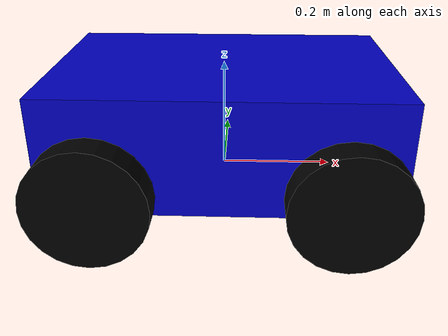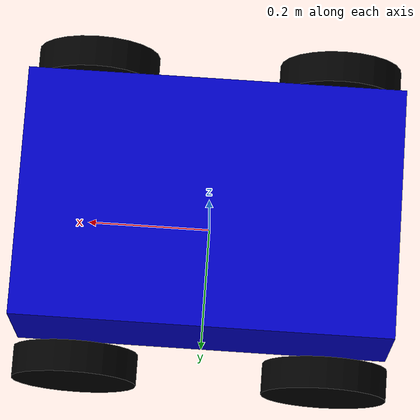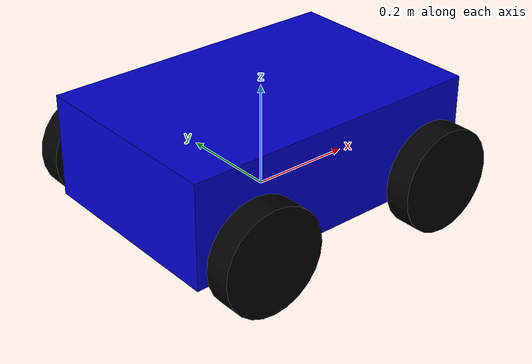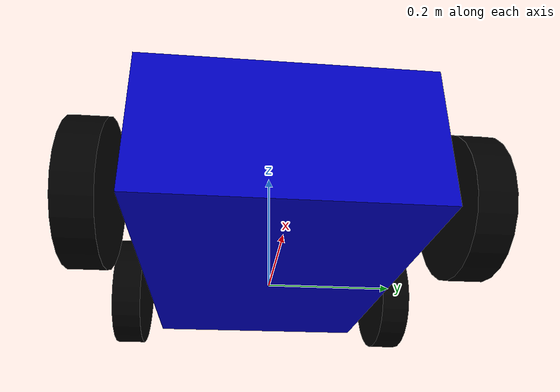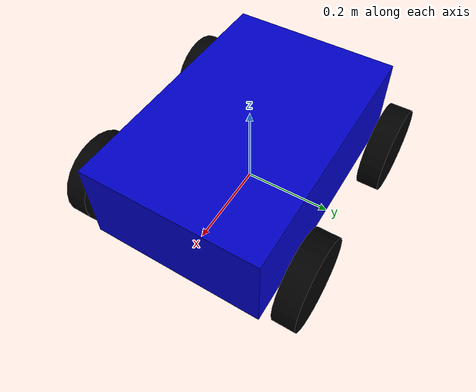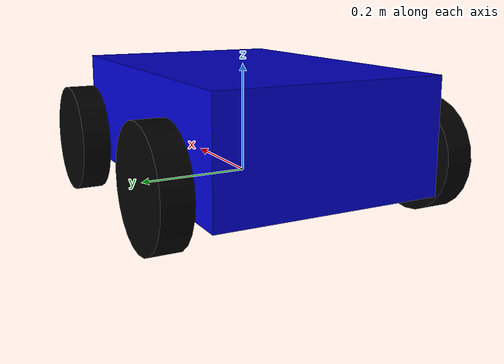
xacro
<?xml version="1.0"?>
<robot xmlns:xacro="http://www.ros.org/wiki/xacro" name="jazzy_bot">

    <material name="blue"> <color rgba="0 0 0.8 1"/> </material>
    <material name="black"> <color rgba="0 0 0 1"/> </material>

    <xacro:property name="base_width" value="0.4"/>
    <xacro:property name="base_length" value="0.6"/>
    <xacro:property name="base_height" value="0.2"/>
    <xacro:property name="wheel_radius" value="0.1"/>
    <xacro:property name="wheel_width" value="0.05"/>
    <xacro:property name="wheel_ygap" value="0.05"/>
    <xacro:property name="wheel_zoff" value="0.05"/>
    <xacro:property name="wheel_xoff" value="0.2"/>

    <xacro:macro name="box_inertia" params="m w h d">
        <inertial>
            <origin xyz="0 0 0" rpy="${pi/2} 0 ${pi/2}"/>
            <mass value="${m}"/>
            <inertia ixx="${(m/12) * (h*h + d*d)}" ixy="0.0" ixz="0.0" iyy="${(m/12) * (w*w + d*d)}" iyz="0.0" izz="${(m/12) * (w*w + h*h)}"/>
        </inertial>
    </xacro:macro>

    <xacro:macro name="cylinder_inertia" params="m r h">
        <inertial>
            <origin xyz="0 0 0" rpy="${pi/2} 0 0" />
            <mass value="${m}"/>
            <inertia ixx="${(m/12) * (3*r*r + h*h)}" ixy="0" ixz="0" iyy="${(m/12) * (3*r*r + h*h)}" iyz="0" izz="${(m/2) * (r*r)}"/>
        </inertial>
    </xacro:macro>

    <link name="base_footprint"/>

    <joint name="base_joint" type="fixed">
        <parent link="base_footprint"/>
        <child link="base_link"/>
        <origin xyz="0 0 ${wheel_radius}" rpy="0 0 0"/>
    </joint>

    <link name="base_link">
        <visual>
            <geometry> <box size="${base_length} ${base_width} ${base_height}"/> </geometry>
            <material name="blue"/>
        </visual>
        <collision>
            <geometry> <box size="${base_length} ${base_width} ${base_height}"/> </geometry>
        </collision>
        <xacro:box_inertia m="15" w="${base_width}" h="${base_height}" d="${base_length}"/>
    </link>

    <xacro:macro name="wheel" params="prefix x_reflect y_reflect">
        <link name="${prefix}_wheel">
            <visual>
                <origin xyz="0 0 0" rpy="${pi/2} 0 0"/>
                <geometry> <cylinder radius="${wheel_radius}" length="${wheel_width}"/> </geometry>
                <material name="black"/>
            </visual>
            <collision>
                <origin xyz="0 0 0" rpy="${pi/2} 0 0"/>
                <geometry> <cylinder radius="${wheel_radius}" length="${wheel_width}"/> </geometry>
            </collision>
            <xacro:cylinder_inertia m="0.5" r="${wheel_radius}" h="${wheel_width}"/>
        </link>

        <joint name="${prefix}_wheel_joint" type="continuous">
            <parent link="base_link"/>
            <child link="${prefix}_wheel"/>
            <origin xyz="${x_reflect*wheel_xoff} ${y_reflect*(base_width/2+wheel_ygap)} ${-wheel_zoff}" rpy="0 0 0"/>
            <axis xyz="0 1 0"/>
        </joint>
    </xacro:macro>

    <xacro:wheel prefix="front_left"  x_reflect="1"  y_reflect="1" />
    <xacro:wheel prefix="front_right" x_reflect="1"  y_reflect="-1" />
    <xacro:wheel prefix="rear_left"   x_reflect="-1" y_reflect="1" />
    <xacro:wheel prefix="rear_right"  x_reflect="-1" y_reflect="-1" />

    <xacro:macro name="ros2_control_config" params="use_sim">

        <ros2_control name="DiffDriveSystem" type="system">
            <hardware>
                <xacro:if value="${use_sim}">
                    <plugin>gz_ros2_control/GazeboSimSystem</plugin>
                </xacro:if>
                <xacro:unless value="${use_sim}">
                    <plugin>diff_drive_robot/DiffDriveHardware</plugin>
                    <param name="serial_port">/dev/ttyUSB0</param>
                    <param name="baud_rate">115200</param>
                </xacro:unless>
            </hardware>
            <joint name="front_left_wheel_joint">
                <command_interface name="velocity"/>
                <state_interface name="position"/>
                <state_interface name="velocity"/>
            </joint>
            <joint name="rear_left_wheel_joint">
                <command_interface name="velocity"/>
                <state_interface name="position"/>
                <state_interface name="velocity"/>
            </joint>
            <joint name="front_right_wheel_joint">
                <command_interface name="velocity"/>
                <state_interface name="position"/>
                <state_interface name="velocity"/>
            </joint>
            <joint name="rear_right_wheel_joint">
                <command_interface name="velocity"/>
                <state_interface name="position"/>
                <state_interface name="velocity"/>
            </joint>
        </ros2_control>

        <xacro:if value="${use_sim}">
            <gazebo>
                <plugin filename="gz_ros2_control-system"
                    name="gz_ros2_control::GazeboSimROS2ControlPlugin">
                    <parameters>$(find mobile_robot_description)/config/controllers.yaml</parameters>
                </plugin>
            </gazebo>
        </xacro:if>
    </xacro:macro>
</robot>
